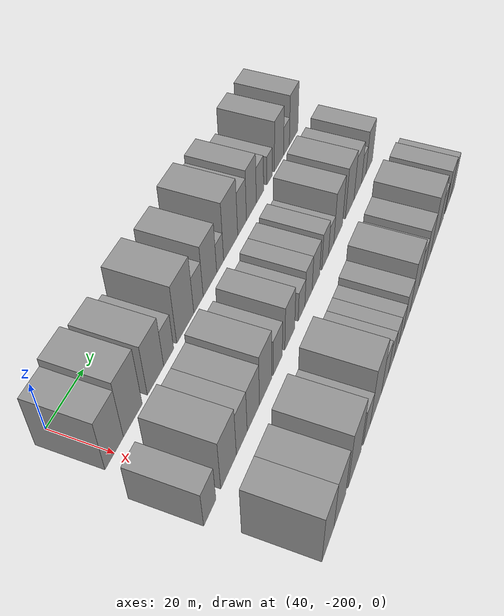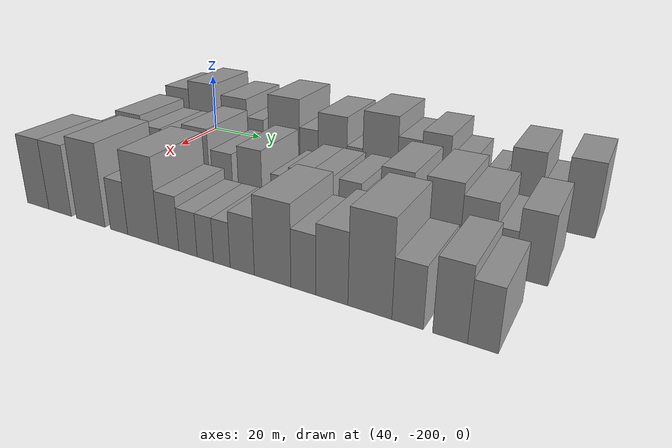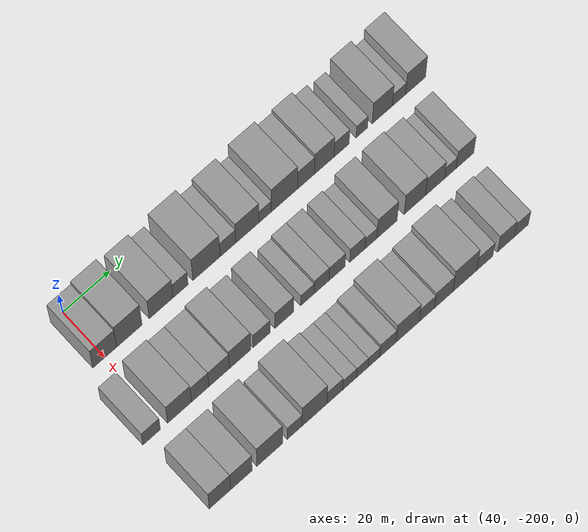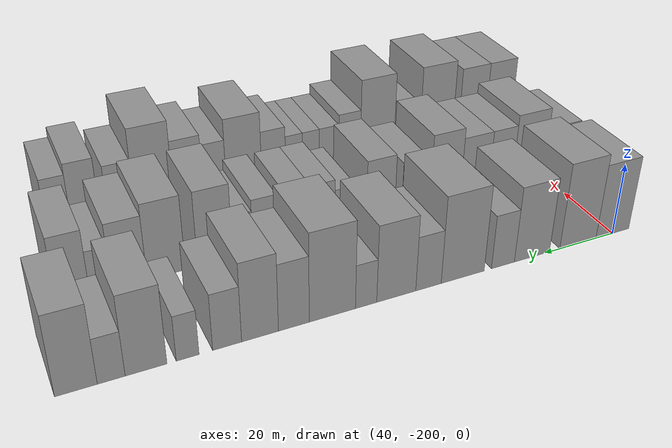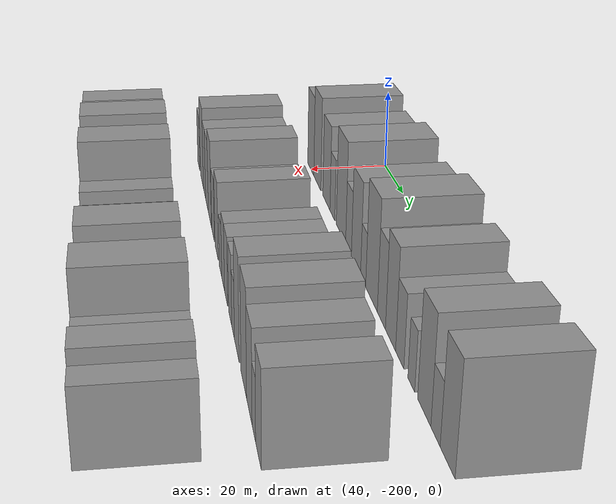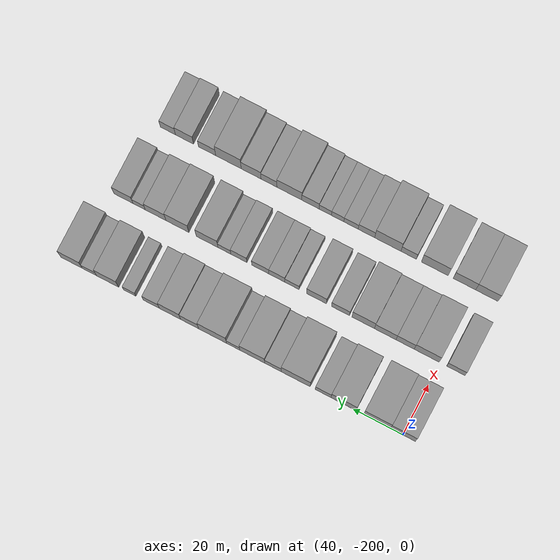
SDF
<sdf version="1.6">
 <world name="default">
  <model name="building_35">
   <static>1</static>
   <pose>50.0000 -200.0415 0 0.000000 0.000000 0.000000</pose>
   <link name="link">
    <pose>0 0 10.50 0 0 0</pose>
    <collision name="collision"><geometry><box><size>20.0000 9.9583 21.0000</size></box></geometry></collision>
    <visual name="visual">
     <cast_shadows>0</cast_shadows>
     <geometry><box><size>20.0000 9.9583 21.0000</size></box></geometry>
     <material>
      <script>
       <uri>model://grey_wall/materials/scripts</uri>
       <uri>model://grey_wall/materials/textures</uri>
       <name>vrc/grey_wall</name>
      </script>
     </material>
    </visual>
   </link>
  </model>
  <model name="building_36">
   <static>1</static>
   <pose>50.0000 -189.6931 0 0.000000 0.000000 0.000000</pose>
   <link name="link">
    <pose>0 0 12.00 0 0 0</pose>
    <collision name="collision"><geometry><box><size>20.0000 10.7384 24.0000</size></box></geometry></collision>
    <visual name="visual">
     <cast_shadows>0</cast_shadows>
     <geometry><box><size>20.0000 10.7384 24.0000</size></box></geometry>
     <material>
      <script>
       <uri>model://grey_wall/materials/scripts</uri>
       <uri>model://grey_wall/materials/textures</uri>
       <name>vrc/grey_wall</name>
      </script>
     </material>
    </visual>
   </link>
  </model>
  <model name="building_37">
   <static>1</static>
   <pose>50.0000 -176.3118 0 0.000000 0.000000 0.000000</pose>
   <link name="link">
    <pose>0 0 10.50 0 0 0</pose>
    <collision name="collision"><geometry><box><size>20.0000 10.0240 21.0000</size></box></geometry></collision>
    <visual name="visual">
     <cast_shadows>0</cast_shadows>
     <geometry><box><size>20.0000 10.0240 21.0000</size></box></geometry>
     <material>
      <script>
       <uri>model://grey_wall/materials/scripts</uri>
       <uri>model://grey_wall/materials/textures</uri>
       <name>vrc/grey_wall</name>
      </script>
     </material>
    </visual>
   </link>
  </model>
  <model name="building_38">
   <static>1</static>
   <pose>50.0000 -168.1040 0 0.000000 0.000000 0.000000</pose>
   <link name="link">
    <pose>0 0 7.50 0 0 0</pose>
    <collision name="collision"><geometry><box><size>20.0000 6.3917 15.0000</size></box></geometry></collision>
    <visual name="visual">
     <cast_shadows>0</cast_shadows>
     <geometry><box><size>20.0000 6.3917 15.0000</size></box></geometry>
     <material>
      <script>
       <uri>model://grey_wall/materials/scripts</uri>
       <uri>model://grey_wall/materials/textures</uri>
       <name>vrc/grey_wall</name>
      </script>
     </material>
    </visual>
   </link>
  </model>
  <model name="building_39">
   <static>1</static>
   <pose>50.0000 -157.1111 0 0.000000 0.000000 0.000000</pose>
   <link name="link">
    <pose>0 0 12.00 0 0 0</pose>
    <collision name="collision"><geometry><box><size>20.0000 11.5940 24.0000</size></box></geometry></collision>
    <visual name="visual">
     <cast_shadows>0</cast_shadows>
     <geometry><box><size>20.0000 11.5940 24.0000</size></box></geometry>
     <material>
      <script>
       <uri>model://grey_wall/materials/scripts</uri>
       <uri>model://grey_wall/materials/textures</uri>
       <name>vrc/grey_wall</name>
      </script>
     </material>
    </visual>
   </link>
  </model>
  <model name="building_40">
   <static>1</static>
   <pose>50.0000 -147.9836 0 0.000000 0.000000 0.000000</pose>
   <link name="link">
    <pose>0 0 7.50 0 0 0</pose>
    <collision name="collision"><geometry><box><size>20.0000 6.6611 15.0000</size></box></geometry></collision>
    <visual name="visual">
     <cast_shadows>0</cast_shadows>
     <geometry><box><size>20.0000 6.6611 15.0000</size></box></geometry>
     <material>
      <script>
       <uri>model://grey_wall/materials/scripts</uri>
       <uri>model://grey_wall/materials/textures</uri>
       <name>vrc/grey_wall</name>
      </script>
     </material>
    </visual>
   </link>
  </model>
  <model name="building_41">
   <static>1</static>
   <pose>50.0000 -139.6642 0 0.000000 0.000000 0.000000</pose>
   <link name="link">
    <pose>0 0 10.50 0 0 0</pose>
    <collision name="collision"><geometry><box><size>20.0000 9.9777 21.0000</size></box></geometry></collision>
    <visual name="visual">
     <cast_shadows>0</cast_shadows>
     <geometry><box><size>20.0000 9.9777 21.0000</size></box></geometry>
     <material>
      <script>
       <uri>model://grey_wall/materials/scripts</uri>
       <uri>model://grey_wall/materials/textures</uri>
       <name>vrc/grey_wall</name>
      </script>
     </material>
    </visual>
   </link>
  </model>
  <model name="building_42">
   <static>1</static>
   <pose>50.0000 -132.0179 0 0.000000 0.000000 0.000000</pose>
   <link name="link">
    <pose>0 0 6.00 0 0 0</pose>
    <collision name="collision"><geometry><box><size>20.0000 5.3148 12.0000</size></box></geometry></collision>
    <visual name="visual">
     <cast_shadows>0</cast_shadows>
     <geometry><box><size>20.0000 5.3148 12.0000</size></box></geometry>
     <material>
      <script>
       <uri>model://grey_wall/materials/scripts</uri>
       <uri>model://grey_wall/materials/textures</uri>
       <name>vrc/grey_wall</name>
      </script>
     </material>
    </visual>
   </link>
  </model>
  <model name="building_43">
   <static>1</static>
   <pose>50.0000 -123.7503 0 0.000000 0.000000 0.000000</pose>
   <link name="link">
    <pose>0 0 12.00 0 0 0</pose>
    <collision name="collision"><geometry><box><size>20.0000 11.2204 24.0000</size></box></geometry></collision>
    <visual name="visual">
     <cast_shadows>0</cast_shadows>
     <geometry><box><size>20.0000 11.2204 24.0000</size></box></geometry>
     <material>
      <script>
       <uri>model://grey_wall/materials/scripts</uri>
       <uri>model://grey_wall/materials/textures</uri>
       <name>vrc/grey_wall</name>
      </script>
     </material>
    </visual>
   </link>
  </model>
  <model name="building_44">
   <static>1</static>
   <pose>50.0000 -114.4987 0 0.000000 0.000000 0.000000</pose>
   <link name="link">
    <pose>0 0 9.00 0 0 0</pose>
    <collision name="collision"><geometry><box><size>20.0000 7.2827 18.0000</size></box></geometry></collision>
    <visual name="visual">
     <cast_shadows>0</cast_shadows>
     <geometry><box><size>20.0000 7.2827 18.0000</size></box></geometry>
     <material>
      <script>
       <uri>model://grey_wall/materials/scripts</uri>
       <uri>model://grey_wall/materials/textures</uri>
       <name>vrc/grey_wall</name>
      </script>
     </material>
    </visual>
   </link>
  </model>
  <model name="building_45">
   <static>1</static>
   <pose>50.0000 -106.6176 0 0.000000 0.000000 0.000000</pose>
   <link name="link">
    <pose>0 0 10.50 0 0 0</pose>
    <collision name="collision"><geometry><box><size>20.0000 8.4797 21.0000</size></box></geometry></collision>
    <visual name="visual">
     <cast_shadows>0</cast_shadows>
     <geometry><box><size>20.0000 8.4797 21.0000</size></box></geometry>
     <material>
      <script>
       <uri>model://grey_wall/materials/scripts</uri>
       <uri>model://grey_wall/materials/textures</uri>
       <name>vrc/grey_wall</name>
      </script>
     </material>
    </visual>
   </link>
  </model>
  <model name="building_46">
   <static>1</static>
   <pose>50.0000 -99.1205 0 0.000000 0.000000 0.000000</pose>
   <link name="link">
    <pose>0 0 7.50 0 0 0</pose>
    <collision name="collision"><geometry><box><size>20.0000 6.5144 15.0000</size></box></geometry></collision>
    <visual name="visual">
     <cast_shadows>0</cast_shadows>
     <geometry><box><size>20.0000 6.5144 15.0000</size></box></geometry>
     <material>
      <script>
       <uri>model://grey_wall/materials/scripts</uri>
       <uri>model://grey_wall/materials/textures</uri>
       <name>vrc/grey_wall</name>
      </script>
     </material>
    </visual>
   </link>
  </model>
  <model name="building_47">
   <static>1</static>
   <pose>50.0000 -90.3728 0 0.000000 0.000000 0.000000</pose>
   <link name="link">
    <pose>0 0 6.00 0 0 0</pose>
    <collision name="collision"><geometry><box><size>20.0000 4.9810 12.0000</size></box></geometry></collision>
    <visual name="visual">
     <cast_shadows>0</cast_shadows>
     <geometry><box><size>20.0000 4.9810 12.0000</size></box></geometry>
     <material>
      <script>
       <uri>model://grey_wall/materials/scripts</uri>
       <uri>model://grey_wall/materials/textures</uri>
       <name>vrc/grey_wall</name>
      </script>
     </material>
    </visual>
   </link>
  </model>
  <model name="building_48">
   <static>1</static>
   <pose>50.0000 -81.4564 0 0.000000 0.000000 0.000000</pose>
   <link name="link">
    <pose>0 0 10.50 0 0 0</pose>
    <collision name="collision"><geometry><box><size>20.0000 8.8519 21.0000</size></box></geometry></collision>
    <visual name="visual">
     <cast_shadows>0</cast_shadows>
     <geometry><box><size>20.0000 8.8519 21.0000</size></box></geometry>
     <material>
      <script>
       <uri>model://grey_wall/materials/scripts</uri>
       <uri>model://grey_wall/materials/textures</uri>
       <name>vrc/grey_wall</name>
      </script>
     </material>
    </visual>
   </link>
  </model>
  <model name="building_49">
   <static>1</static>
   <pose>50.0000 -74.1553 0 0.000000 0.000000 0.000000</pose>
   <link name="link">
    <pose>0 0 6.00 0 0 0</pose>
    <collision name="collision"><geometry><box><size>20.0000 5.7502 12.0000</size></box></geometry></collision>
    <visual name="visual">
     <cast_shadows>0</cast_shadows>
     <geometry><box><size>20.0000 5.7502 12.0000</size></box></geometry>
     <material>
      <script>
       <uri>model://grey_wall/materials/scripts</uri>
       <uri>model://grey_wall/materials/textures</uri>
       <name>vrc/grey_wall</name>
      </script>
     </material>
    </visual>
   </link>
  </model>
  <model name="building_50">
   <static>1</static>
   <pose>50.0000 -66.9505 0 0.000000 0.000000 0.000000</pose>
   <link name="link">
    <pose>0 0 10.50 0 0 0</pose>
    <collision name="collision"><geometry><box><size>20.0000 8.6593 21.0000</size></box></geometry></collision>
    <visual name="visual">
     <cast_shadows>0</cast_shadows>
     <geometry><box><size>20.0000 8.6593 21.0000</size></box></geometry>
     <material>
      <script>
       <uri>model://grey_wall/materials/scripts</uri>
       <uri>model://grey_wall/materials/textures</uri>
       <name>vrc/grey_wall</name>
      </script>
     </material>
    </visual>
   </link>
  </model>
  <model name="building_151">
   <static>1</static>
   <pose>79.0000 -206.2512 0 0.000000 0.000000 0.000000</pose>
   <link name="link">
    <pose>0 0 7.50 0 0 0</pose>
    <collision name="collision"><geometry><box><size>20.0000 7.3293 15.0000</size></box></geometry></collision>
    <visual name="visual">
     <cast_shadows>0</cast_shadows>
     <geometry><box><size>20.0000 7.3293 15.0000</size></box></geometry>
     <material>
      <script>
       <uri>model://grey_wall/materials/scripts</uri>
       <uri>model://grey_wall/materials/textures</uri>
       <name>vrc/grey_wall</name>
      </script>
     </material>
    </visual>
   </link>
  </model>
  <model name="building_152">
   <static>1</static>
   <pose>79.0000 -194.5853 0 0.000000 0.000000 0.000000</pose>
   <link name="link">
    <pose>0 0 10.50 0 0 0</pose>
    <collision name="collision"><geometry><box><size>20.0000 10.0024 21.0000</size></box></geometry></collision>
    <visual name="visual">
     <cast_shadows>0</cast_shadows>
     <geometry><box><size>20.0000 10.0024 21.0000</size></box></geometry>
     <material>
      <script>
       <uri>model://grey_wall/materials/scripts</uri>
       <uri>model://grey_wall/materials/textures</uri>
       <name>vrc/grey_wall</name>
      </script>
     </material>
    </visual>
   </link>
  </model>
  <model name="building_153">
   <static>1</static>
   <pose>79.0000 -185.9351 0 0.000000 0.000000 0.000000</pose>
   <link name="link">
    <pose>0 0 9.00 0 0 0</pose>
    <collision name="collision"><geometry><box><size>20.0000 7.2979 18.0000</size></box></geometry></collision>
    <visual name="visual">
     <cast_shadows>0</cast_shadows>
     <geometry><box><size>20.0000 7.2979 18.0000</size></box></geometry>
     <material>
      <script>
       <uri>model://grey_wall/materials/scripts</uri>
       <uri>model://grey_wall/materials/textures</uri>
       <name>vrc/grey_wall</name>
      </script>
     </material>
    </visual>
   </link>
  </model>
  <model name="building_154">
   <static>1</static>
   <pose>79.0000 -177.9719 0 0.000000 0.000000 0.000000</pose>
   <link name="link">
    <pose>0 0 9.00 0 0 0</pose>
    <collision name="collision"><geometry><box><size>20.0000 8.6286 18.0000</size></box></geometry></collision>
    <visual name="visual">
     <cast_shadows>0</cast_shadows>
     <geometry><box><size>20.0000 8.6286 18.0000</size></box></geometry>
     <material>
      <script>
       <uri>model://grey_wall/materials/scripts</uri>
       <uri>model://grey_wall/materials/textures</uri>
       <name>vrc/grey_wall</name>
      </script>
     </material>
    </visual>
   </link>
  </model>
  <model name="building_155">
   <static>1</static>
   <pose>79.0000 -169.1197 0 0.000000 0.000000 0.000000</pose>
   <link name="link">
    <pose>0 0 10.50 0 0 0</pose>
    <collision name="collision"><geometry><box><size>20.0000 9.0757 21.0000</size></box></geometry></collision>
    <visual name="visual">
     <cast_shadows>0</cast_shadows>
     <geometry><box><size>20.0000 9.0757 21.0000</size></box></geometry>
     <material>
      <script>
       <uri>model://grey_wall/materials/scripts</uri>
       <uri>model://grey_wall/materials/textures</uri>
       <name>vrc/grey_wall</name>
      </script>
     </material>
    </visual>
   </link>
  </model>
  <model name="building_156">
   <static>1</static>
   <pose>79.0000 -159.9670 0 0.000000 0.000000 0.000000</pose>
   <link name="link">
    <pose>0 0 7.50 0 0 0</pose>
    <collision name="collision"><geometry><box><size>20.0000 7.2298 15.0000</size></box></geometry></collision>
    <visual name="visual">
     <cast_shadows>0</cast_shadows>
     <geometry><box><size>20.0000 7.2298 15.0000</size></box></geometry>
     <material>
      <script>
       <uri>model://grey_wall/materials/scripts</uri>
       <uri>model://grey_wall/materials/textures</uri>
       <name>vrc/grey_wall</name>
      </script>
     </material>
    </visual>
   </link>
  </model>
  <model name="building_157">
   <static>1</static>
   <pose>79.0000 -150.3492 0 0.000000 0.000000 0.000000</pose>
   <link name="link">
    <pose>0 0 9.00 0 0 0</pose>
    <collision name="collision"><geometry><box><size>20.0000 8.0058 18.0000</size></box></geometry></collision>
    <visual name="visual">
     <cast_shadows>0</cast_shadows>
     <geometry><box><size>20.0000 8.0058 18.0000</size></box></geometry>
     <material>
      <script>
       <uri>model://grey_wall/materials/scripts</uri>
       <uri>model://grey_wall/materials/textures</uri>
       <name>vrc/grey_wall</name>
      </script>
     </material>
    </visual>
   </link>
  </model>
  <model name="building_158">
   <static>1</static>
   <pose>79.0000 -140.4875 0 0.000000 0.000000 0.000000</pose>
   <link name="link">
    <pose>0 0 6.00 0 0 0</pose>
    <collision name="collision"><geometry><box><size>20.0000 5.7177 12.0000</size></box></geometry></collision>
    <visual name="visual">
     <cast_shadows>0</cast_shadows>
     <geometry><box><size>20.0000 5.7177 12.0000</size></box></geometry>
     <material>
      <script>
       <uri>model://grey_wall/materials/scripts</uri>
       <uri>model://grey_wall/materials/textures</uri>
       <name>vrc/grey_wall</name>
      </script>
     </material>
    </visual>
   </link>
  </model>
  <model name="building_159">
   <static>1</static>
   <pose>79.0000 -134.4205 0 0.000000 0.000000 0.000000</pose>
   <link name="link">
    <pose>0 0 7.50 0 0 0</pose>
    <collision name="collision"><geometry><box><size>20.0000 6.4163 15.0000</size></box></geometry></collision>
    <visual name="visual">
     <cast_shadows>0</cast_shadows>
     <geometry><box><size>20.0000 6.4163 15.0000</size></box></geometry>
     <material>
      <script>
       <uri>model://grey_wall/materials/scripts</uri>
       <uri>model://grey_wall/materials/textures</uri>
       <name>vrc/grey_wall</name>
      </script>
     </material>
    </visual>
   </link>
  </model>
  <model name="building_160">
   <static>1</static>
   <pose>79.0000 -127.7711 0 0.000000 0.000000 0.000000</pose>
   <link name="link">
    <pose>0 0 7.50 0 0 0</pose>
    <collision name="collision"><geometry><box><size>20.0000 6.8824 15.0000</size></box></geometry></collision>
    <visual name="visual">
     <cast_shadows>0</cast_shadows>
     <geometry><box><size>20.0000 6.8824 15.0000</size></box></geometry>
     <material>
      <script>
       <uri>model://grey_wall/materials/scripts</uri>
       <uri>model://grey_wall/materials/textures</uri>
       <name>vrc/grey_wall</name>
      </script>
     </material>
    </visual>
   </link>
  </model>
  <model name="building_161">
   <static>1</static>
   <pose>79.0000 -119.1075 0 0.000000 0.000000 0.000000</pose>
   <link name="link">
    <pose>0 0 7.50 0 0 0</pose>
    <collision name="collision"><geometry><box><size>20.0000 6.4448 15.0000</size></box></geometry></collision>
    <visual name="visual">
     <cast_shadows>0</cast_shadows>
     <geometry><box><size>20.0000 6.4448 15.0000</size></box></geometry>
     <material>
      <script>
       <uri>model://grey_wall/materials/scripts</uri>
       <uri>model://grey_wall/materials/textures</uri>
       <name>vrc/grey_wall</name>
      </script>
     </material>
    </visual>
   </link>
  </model>
  <model name="building_162">
   <static>1</static>
   <pose>79.0000 -113.2965 0 0.000000 0.000000 0.000000</pose>
   <link name="link">
    <pose>0 0 6.00 0 0 0</pose>
    <collision name="collision"><geometry><box><size>20.0000 5.1772 12.0000</size></box></geometry></collision>
    <visual name="visual">
     <cast_shadows>0</cast_shadows>
     <geometry><box><size>20.0000 5.1772 12.0000</size></box></geometry>
     <material>
      <script>
       <uri>model://grey_wall/materials/scripts</uri>
       <uri>model://grey_wall/materials/textures</uri>
       <name>vrc/grey_wall</name>
      </script>
     </material>
    </visual>
   </link>
  </model>
  <model name="building_163">
   <static>1</static>
   <pose>79.0000 -106.3267 0 0.000000 0.000000 0.000000</pose>
   <link name="link">
    <pose>0 0 10.50 0 0 0</pose>
    <collision name="collision"><geometry><box><size>20.0000 8.7623 21.0000</size></box></geometry></collision>
    <visual name="visual">
     <cast_shadows>0</cast_shadows>
     <geometry><box><size>20.0000 8.7623 21.0000</size></box></geometry>
     <material>
      <script>
       <uri>model://grey_wall/materials/scripts</uri>
       <uri>model://grey_wall/materials/textures</uri>
       <name>vrc/grey_wall</name>
      </script>
     </material>
    </visual>
   </link>
  </model>
  <model name="building_164">
   <static>1</static>
   <pose>79.0000 -94.3277 0 0.000000 0.000000 0.000000</pose>
   <link name="link">
    <pose>0 0 10.50 0 0 0</pose>
    <collision name="collision"><geometry><box><size>20.0000 9.2357 21.0000</size></box></geometry></collision>
    <visual name="visual">
     <cast_shadows>0</cast_shadows>
     <geometry><box><size>20.0000 9.2357 21.0000</size></box></geometry>
     <material>
      <script>
       <uri>model://grey_wall/materials/scripts</uri>
       <uri>model://grey_wall/materials/textures</uri>
       <name>vrc/grey_wall</name>
      </script>
     </material>
    </visual>
   </link>
  </model>
  <model name="building_165">
   <static>1</static>
   <pose>79.0000 -85.5269 0 0.000000 0.000000 0.000000</pose>
   <link name="link">
    <pose>0 0 9.00 0 0 0</pose>
    <collision name="collision"><geometry><box><size>20.0000 8.3660 18.0000</size></box></geometry></collision>
    <visual name="visual">
     <cast_shadows>0</cast_shadows>
     <geometry><box><size>20.0000 8.3660 18.0000</size></box></geometry>
     <material>
      <script>
       <uri>model://grey_wall/materials/scripts</uri>
       <uri>model://grey_wall/materials/textures</uri>
       <name>vrc/grey_wall</name>
      </script>
     </material>
    </visual>
   </link>
  </model>
  <model name="building_166">
   <static>1</static>
   <pose>79.0000 -78.8418 0 0.000000 0.000000 0.000000</pose>
   <link name="link">
    <pose>0 0 6.00 0 0 0</pose>
    <collision name="collision"><geometry><box><size>20.0000 5.0042 12.0000</size></box></geometry></collision>
    <visual name="visual">
     <cast_shadows>0</cast_shadows>
     <geometry><box><size>20.0000 5.0042 12.0000</size></box></geometry>
     <material>
      <script>
       <uri>model://grey_wall/materials/scripts</uri>
       <uri>model://grey_wall/materials/textures</uri>
       <name>vrc/grey_wall</name>
      </script>
     </material>
    </visual>
   </link>
  </model>
  <model name="building_167">
   <static>1</static>
   <pose>79.0000 -72.4954 0 0.000000 0.000000 0.000000</pose>
   <link name="link">
    <pose>0 0 9.00 0 0 0</pose>
    <collision name="collision"><geometry><box><size>20.0000 7.6885 18.0000</size></box></geometry></collision>
    <visual name="visual">
     <cast_shadows>0</cast_shadows>
     <geometry><box><size>20.0000 7.6885 18.0000</size></box></geometry>
     <material>
      <script>
       <uri>model://grey_wall/materials/scripts</uri>
       <uri>model://grey_wall/materials/textures</uri>
       <name>vrc/grey_wall</name>
      </script>
     </material>
    </visual>
   </link>
  </model>
  <model name="building_264">
   <static>1</static>
   <pose>108.0000 -203.7855 0 0.000000 0.000000 0.000000</pose>
   <link name="link">
    <pose>0 0 10.50 0 0 0</pose>
    <collision name="collision"><geometry><box><size>20.0000 8.9463 21.0000</size></box></geometry></collision>
    <visual name="visual">
     <cast_shadows>0</cast_shadows>
     <geometry><box><size>20.0000 8.9463 21.0000</size></box></geometry>
     <material>
      <script>
       <uri>model://grey_wall/materials/scripts</uri>
       <uri>model://grey_wall/materials/textures</uri>
       <name>vrc/grey_wall</name>
      </script>
     </material>
    </visual>
   </link>
  </model>
  <model name="building_265">
   <static>1</static>
   <pose>108.0000 -194.8034 0 0.000000 0.000000 0.000000</pose>
   <link name="link">
    <pose>0 0 10.50 0 0 0</pose>
    <collision name="collision"><geometry><box><size>20.0000 9.0179 21.0000</size></box></geometry></collision>
    <visual name="visual">
     <cast_shadows>0</cast_shadows>
     <geometry><box><size>20.0000 9.0179 21.0000</size></box></geometry>
     <material>
      <script>
       <uri>model://grey_wall/materials/scripts</uri>
       <uri>model://grey_wall/materials/textures</uri>
       <name>vrc/grey_wall</name>
      </script>
     </material>
    </visual>
   </link>
  </model>
  <model name="building_266">
   <static>1</static>
   <pose>108.0000 -182.8964 0 0.000000 0.000000 0.000000</pose>
   <link name="link">
    <pose>0 0 12.00 0 0 0</pose>
    <collision name="collision"><geometry><box><size>20.0000 10.7960 24.0000</size></box></geometry></collision>
    <visual name="visual">
     <cast_shadows>0</cast_shadows>
     <geometry><box><size>20.0000 10.7960 24.0000</size></box></geometry>
     <material>
      <script>
       <uri>model://grey_wall/materials/scripts</uri>
       <uri>model://grey_wall/materials/textures</uri>
       <name>vrc/grey_wall</name>
      </script>
     </material>
    </visual>
   </link>
  </model>
  <model name="building_267">
   <static>1</static>
   <pose>108.0000 -172.3982 0 0.000000 0.000000 0.000000</pose>
   <link name="link">
    <pose>0 0 7.50 0 0 0</pose>
    <collision name="collision"><geometry><box><size>20.0000 6.2003 15.0000</size></box></geometry></collision>
    <visual name="visual">
     <cast_shadows>0</cast_shadows>
     <geometry><box><size>20.0000 6.2003 15.0000</size></box></geometry>
     <material>
      <script>
       <uri>model://grey_wall/materials/scripts</uri>
       <uri>model://grey_wall/materials/textures</uri>
       <name>vrc/grey_wall</name>
      </script>
     </material>
    </visual>
   </link>
  </model>
  <model name="building_268">
   <static>1</static>
   <pose>108.0000 -164.0197 0 0.000000 0.000000 0.000000</pose>
   <link name="link">
    <pose>0 0 12.00 0 0 0</pose>
    <collision name="collision"><geometry><box><size>20.0000 10.5568 24.0000</size></box></geometry></collision>
    <visual name="visual">
     <cast_shadows>0</cast_shadows>
     <geometry><box><size>20.0000 10.5568 24.0000</size></box></geometry>
     <material>
      <script>
       <uri>model://grey_wall/materials/scripts</uri>
       <uri>model://grey_wall/materials/textures</uri>
       <name>vrc/grey_wall</name>
      </script>
     </material>
    </visual>
   </link>
  </model>
  <model name="building_269">
   <static>1</static>
   <pose>108.0000 -155.4116 0 0.000000 0.000000 0.000000</pose>
   <link name="link">
    <pose>0 0 7.50 0 0 0</pose>
    <collision name="collision"><geometry><box><size>20.0000 6.6593 15.0000</size></box></geometry></collision>
    <visual name="visual">
     <cast_shadows>0</cast_shadows>
     <geometry><box><size>20.0000 6.6593 15.0000</size></box></geometry>
     <material>
      <script>
       <uri>model://grey_wall/materials/scripts</uri>
       <uri>model://grey_wall/materials/textures</uri>
       <name>vrc/grey_wall</name>
      </script>
     </material>
    </visual>
   </link>
  </model>
  <model name="building_270">
   <static>1</static>
   <pose>108.0000 -149.1945 0 0.000000 0.000000 0.000000</pose>
   <link name="link">
    <pose>0 0 6.00 0 0 0</pose>
    <collision name="collision"><geometry><box><size>20.0000 5.7749 12.0000</size></box></geometry></collision>
    <visual name="visual">
     <cast_shadows>0</cast_shadows>
     <geometry><box><size>20.0000 5.7749 12.0000</size></box></geometry>
     <material>
      <script>
       <uri>model://grey_wall/materials/scripts</uri>
       <uri>model://grey_wall/materials/textures</uri>
       <name>vrc/grey_wall</name>
      </script>
     </material>
    </visual>
   </link>
  </model>
  <model name="building_271">
   <static>1</static>
   <pose>108.0000 -143.8020 0 0.000000 0.000000 0.000000</pose>
   <link name="link">
    <pose>0 0 6.00 0 0 0</pose>
    <collision name="collision"><geometry><box><size>20.0000 5.0101 12.0000</size></box></geometry></collision>
    <visual name="visual">
     <cast_shadows>0</cast_shadows>
     <geometry><box><size>20.0000 5.0101 12.0000</size></box></geometry>
     <material>
      <script>
       <uri>model://grey_wall/materials/scripts</uri>
       <uri>model://grey_wall/materials/textures</uri>
       <name>vrc/grey_wall</name>
      </script>
     </material>
    </visual>
   </link>
  </model>
  <model name="building_272">
   <static>1</static>
   <pose>108.0000 -138.8097 0 0.000000 0.000000 0.000000</pose>
   <link name="link">
    <pose>0 0 6.00 0 0 0</pose>
    <collision name="collision"><geometry><box><size>20.0000 4.9744 12.0000</size></box></geometry></collision>
    <visual name="visual">
     <cast_shadows>0</cast_shadows>
     <geometry><box><size>20.0000 4.9744 12.0000</size></box></geometry>
     <material>
      <script>
       <uri>model://grey_wall/materials/scripts</uri>
       <uri>model://grey_wall/materials/textures</uri>
       <name>vrc/grey_wall</name>
      </script>
     </material>
    </visual>
   </link>
  </model>
  <model name="building_273">
   <static>1</static>
   <pose>108.0000 -132.8441 0 0.000000 0.000000 0.000000</pose>
   <link name="link">
    <pose>0 0 7.50 0 0 0</pose>
    <collision name="collision"><geometry><box><size>20.0000 6.9568 15.0000</size></box></geometry></collision>
    <visual name="visual">
     <cast_shadows>0</cast_shadows>
     <geometry><box><size>20.0000 6.9568 15.0000</size></box></geometry>
     <material>
      <script>
       <uri>model://grey_wall/materials/scripts</uri>
       <uri>model://grey_wall/materials/textures</uri>
       <name>vrc/grey_wall</name>
      </script>
     </material>
    </visual>
   </link>
  </model>
  <model name="building_274">
   <static>1</static>
   <pose>108.0000 -124.3556 0 0.000000 0.000000 0.000000</pose>
   <link name="link">
    <pose>0 0 10.50 0 0 0</pose>
    <collision name="collision"><geometry><box><size>20.0000 10.0202 21.0000</size></box></geometry></collision>
    <visual name="visual">
     <cast_shadows>0</cast_shadows>
     <geometry><box><size>20.0000 10.0202 21.0000</size></box></geometry>
     <material>
      <script>
       <uri>model://grey_wall/materials/scripts</uri>
       <uri>model://grey_wall/materials/textures</uri>
       <name>vrc/grey_wall</name>
      </script>
     </material>
    </visual>
   </link>
  </model>
  <model name="building_275">
   <static>1</static>
   <pose>108.0000 -116.1146 0 0.000000 0.000000 0.000000</pose>
   <link name="link">
    <pose>0 0 7.50 0 0 0</pose>
    <collision name="collision"><geometry><box><size>20.0000 6.4617 15.0000</size></box></geometry></collision>
    <visual name="visual">
     <cast_shadows>0</cast_shadows>
     <geometry><box><size>20.0000 6.4617 15.0000</size></box></geometry>
     <material>
      <script>
       <uri>model://grey_wall/materials/scripts</uri>
       <uri>model://grey_wall/materials/textures</uri>
       <name>vrc/grey_wall</name>
      </script>
     </material>
    </visual>
   </link>
  </model>
  <model name="building_276">
   <static>1</static>
   <pose>108.0000 -108.8894 0 0.000000 0.000000 0.000000</pose>
   <link name="link">
    <pose>0 0 9.00 0 0 0</pose>
    <collision name="collision"><geometry><box><size>20.0000 7.9887 18.0000</size></box></geometry></collision>
    <visual name="visual">
     <cast_shadows>0</cast_shadows>
     <geometry><box><size>20.0000 7.9887 18.0000</size></box></geometry>
     <material>
      <script>
       <uri>model://grey_wall/materials/scripts</uri>
       <uri>model://grey_wall/materials/textures</uri>
       <name>vrc/grey_wall</name>
      </script>
     </material>
    </visual>
   </link>
  </model>
  <model name="building_277">
   <static>1</static>
   <pose>108.0000 -99.7335 0 0.000000 0.000000 0.000000</pose>
   <link name="link">
    <pose>0 0 12.00 0 0 0</pose>
    <collision name="collision"><geometry><box><size>20.0000 10.3232 24.0000</size></box></geometry></collision>
    <visual name="visual">
     <cast_shadows>0</cast_shadows>
     <geometry><box><size>20.0000 10.3232 24.0000</size></box></geometry>
     <material>
      <script>
       <uri>model://grey_wall/materials/scripts</uri>
       <uri>model://grey_wall/materials/textures</uri>
       <name>vrc/grey_wall</name>
      </script>
     </material>
    </visual>
   </link>
  </model>
  <model name="building_278">
   <static>1</static>
   <pose>108.0000 -91.0839 0 0.000000 0.000000 0.000000</pose>
   <link name="link">
    <pose>0 0 7.50 0 0 0</pose>
    <collision name="collision"><geometry><box><size>20.0000 6.9760 15.0000</size></box></geometry></collision>
    <visual name="visual">
     <cast_shadows>0</cast_shadows>
     <geometry><box><size>20.0000 6.9760 15.0000</size></box></geometry>
     <material>
      <script>
       <uri>model://grey_wall/materials/scripts</uri>
       <uri>model://grey_wall/materials/textures</uri>
       <name>vrc/grey_wall</name>
      </script>
     </material>
    </visual>
   </link>
  </model>
  <model name="building_279">
   <static>1</static>
   <pose>108.0000 -81.9476 0 0.000000 0.000000 0.000000</pose>
   <link name="link">
    <pose>0 0 9.00 0 0 0</pose>
    <collision name="collision"><geometry><box><size>20.0000 7.2966 18.0000</size></box></geometry></collision>
    <visual name="visual">
     <cast_shadows>0</cast_shadows>
     <geometry><box><size>20.0000 7.2966 18.0000</size></box></geometry>
     <material>
      <script>
       <uri>model://grey_wall/materials/scripts</uri>
       <uri>model://grey_wall/materials/textures</uri>
       <name>vrc/grey_wall</name>
      </script>
     </material>
    </visual>
   </link>
  </model>
  <model name="building_280">
   <static>1</static>
   <pose>108.0000 -75.2270 0 0.000000 0.000000 0.000000</pose>
   <link name="link">
    <pose>0 0 7.50 0 0 0</pose>
    <collision name="collision"><geometry><box><size>20.0000 6.1446 15.0000</size></box></geometry></collision>
    <visual name="visual">
     <cast_shadows>0</cast_shadows>
     <geometry><box><size>20.0000 6.1446 15.0000</size></box></geometry>
     <material>
      <script>
       <uri>model://grey_wall/materials/scripts</uri>
       <uri>model://grey_wall/materials/textures</uri>
       <name>vrc/grey_wall</name>
      </script>
     </material>
    </visual>
   </link>
  </model>
 </world>
</sdf>
